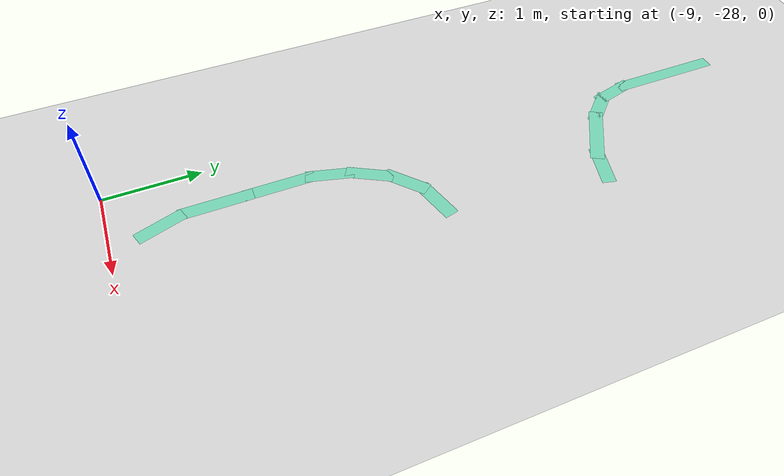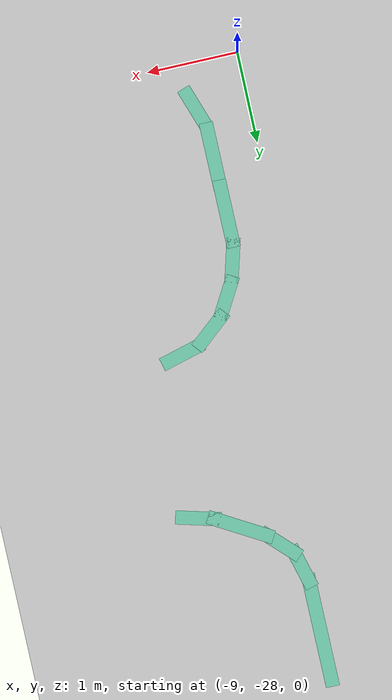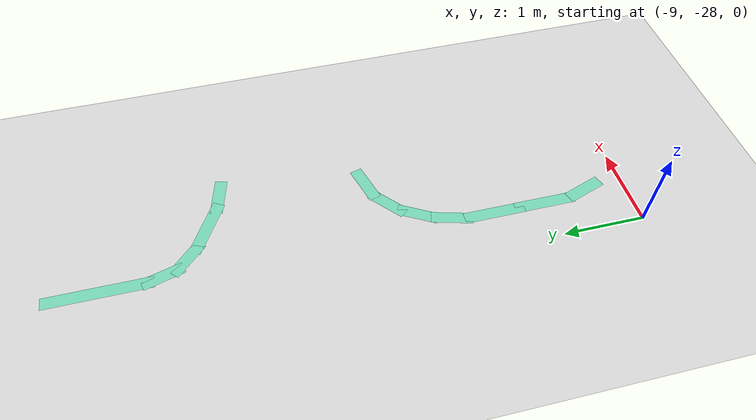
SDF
<sdf version="1.6">
 <world name="world">
  <model name="ground_plane">
   <static>1</static>
   <link name="link">
    <collision name="collision">
     <geometry><plane><normal>0 0 1</normal><size>100 100</size></plane></geometry>
     <surface><friction><ode><mu>100</mu><mu2>50</mu2></ode></friction></surface>
    </collision>
    <visual name="visual">
     <cast_shadows>0</cast_shadows>
     <geometry><plane><normal>0 0 1</normal><size>100 100</size></plane></geometry>
     <material>
      <script><uri>file://media/materials/scripts/gazebo.material</uri><name>Gazebo/Grey</name></script>
     </material>
    </visual>
   </link>
   <pose>0 0 -0.1 0 -0 0</pose>
  </model>
  <model name="path_hospital">
   <link name="Wall_44_clone">
    <pose>-6.90488 1.17038 0 0 -0 1.5708</pose>
    <visual name="Wall_44_Visual">
     <geometry><box><size>0.75 0.15 0</size></box></geometry>
     <material>
      <script><uri>file://media/materials/scripts/gazebo.material</uri><name>Gazebo/Grey</name></script>
      <ambient>0.435294 0.796078 0.67451 1</ambient>
      <shader type="pixel"/>
     </material>
     <meta><layer>0</layer></meta>
    </visual>
    <collision name="Wall_44_Collision">
     <geometry><box><size>0.75 0.15 0</size></box></geometry>
     <surface>
      <friction>
       <ode><mu>1</mu><mu2>1</mu2><fdir1>0 0 0</fdir1><slip1>0</slip1><slip2>0</slip2></ode>
       <torsional>
        <coefficient>1</coefficient>
        <patch_radius>0</patch_radius>
        <surface_radius>0</surface_radius>
        <use_patch_radius>1</use_patch_radius>
        <ode><slip>0</slip></ode>
       </torsional>
      </friction>
      <bounce><restitution_coefficient>0</restitution_coefficient><threshold>1e+06</threshold></bounce>
      <contact>
       <collide_without_contact>0</collide_without_contact>
       <collide_without_contact_bitmask>1</collide_without_contact_bitmask>
       <collide_bitmask>1</collide_bitmask>
       <ode>
        <soft_cfm>0</soft_cfm>
        <soft_erp>0.2</soft_erp>
        <kp>1e+13</kp>
        <kd>1</kd>
        <max_vel>0.01</max_vel>
        <min_depth>0</min_depth>
       </ode>
       <bullet>
        <split_impulse>1</split_impulse>
        <split_impulse_penetration_threshold>-0.01</split_impulse_penetration_threshold>
        <soft_cfm>0</soft_cfm>
        <soft_erp>0.2</soft_erp>
        <kp>1e+13</kp>
        <kd>1</kd>
       </bullet>
      </contact>
     </surface>
    </collision>
   </link>
   <link name="Wall_44_clone_0">
    <pose>-6.9028 0.531311 0 0 -0 1.5708</pose>
    <visual name="Wall_44_Visual">
     <geometry><box><size>0.75 0.15 0</size></box></geometry>
     <material>
      <script><uri>file://media/materials/scripts/gazebo.material</uri><name>Gazebo/Grey</name></script>
      <ambient>0.435294 0.796078 0.67451 1</ambient>
      <shader type="pixel"/>
     </material>
     <meta><layer>0</layer></meta>
    </visual>
    <collision name="Wall_44_Collision">
     <geometry><box><size>0.75 0.15 0</size></box></geometry>
     <surface>
      <friction>
       <ode><mu>1</mu><mu2>1</mu2><fdir1>0 0 0</fdir1><slip1>0</slip1><slip2>0</slip2></ode>
       <torsional>
        <coefficient>1</coefficient>
        <patch_radius>0</patch_radius>
        <surface_radius>0</surface_radius>
        <use_patch_radius>1</use_patch_radius>
        <ode><slip>0</slip></ode>
       </torsional>
      </friction>
      <bounce><restitution_coefficient>0</restitution_coefficient><threshold>1e+06</threshold></bounce>
      <contact>
       <collide_without_contact>0</collide_without_contact>
       <collide_without_contact_bitmask>1</collide_without_contact_bitmask>
       <collide_bitmask>1</collide_bitmask>
       <ode>
        <soft_cfm>0</soft_cfm>
        <soft_erp>0.2</soft_erp>
        <kp>1e+13</kp>
        <kd>1</kd>
        <max_vel>0.01</max_vel>
        <min_depth>0</min_depth>
       </ode>
       <bullet>
        <split_impulse>1</split_impulse>
        <split_impulse_penetration_threshold>-0.01</split_impulse_penetration_threshold>
        <soft_cfm>0</soft_cfm>
        <soft_erp>0.2</soft_erp>
        <kp>1e+13</kp>
        <kd>1</kd>
       </bullet>
      </contact>
     </surface>
    </collision>
   </link>
   <link name="Wall_46_clone_clone_clone_0">
    <pose>-6.70207 2.06609 0 0 -0 1.0472</pose>
    <visual name="Wall_46_Visual">
     <geometry><box><size>0.5 0.15 0</size></box></geometry>
     <material>
      <script><uri>file://media/materials/scripts/gazebo.material</uri><name>Gazebo/Grey</name></script>
      <ambient>0.435294 0.796078 0.67451 1</ambient>
      <shader type="pixel"/>
     </material>
     <meta><layer>0</layer></meta>
    </visual>
    <collision name="Wall_46_Collision">
     <geometry><box><size>0.5 0.15 0</size></box></geometry>
     <surface>
      <friction>
       <ode><mu>1</mu><mu2>1</mu2><fdir1>0 0 0</fdir1><slip1>0</slip1><slip2>0</slip2></ode>
       <torsional>
        <coefficient>1</coefficient>
        <patch_radius>0</patch_radius>
        <surface_radius>0</surface_radius>
        <use_patch_radius>1</use_patch_radius>
        <ode><slip>0</slip></ode>
       </torsional>
      </friction>
      <bounce><restitution_coefficient>0</restitution_coefficient><threshold>1e+06</threshold></bounce>
      <contact>
       <collide_without_contact>0</collide_without_contact>
       <collide_without_contact_bitmask>1</collide_without_contact_bitmask>
       <collide_bitmask>1</collide_bitmask>
       <ode>
        <soft_cfm>0</soft_cfm>
        <soft_erp>0.2</soft_erp>
        <kp>1e+13</kp>
        <kd>1</kd>
        <max_vel>0.01</max_vel>
        <min_depth>0</min_depth>
       </ode>
       <bullet>
        <split_impulse>1</split_impulse>
        <split_impulse_penetration_threshold>-0.01</split_impulse_penetration_threshold>
        <soft_cfm>0</soft_cfm>
        <soft_erp>0.2</soft_erp>
        <kp>1e+13</kp>
        <kd>1</kd>
       </bullet>
      </contact>
     </surface>
    </collision>
   </link>
   <link name="Wall_46_clone_clone_clone_1">
    <pose>-6.85582 1.68768 0 0 -0 1.3</pose>
    <inertial>
     <mass>1</mass>
     <inertia><ixx>1</ixx><ixy>0</ixy><ixz>0</ixz><iyy>1</iyy><iyz>0</iyz><izz>1</izz></inertia>
    </inertial>
    <visual name="Wall_46_Visual">
     <geometry><box><size>0.5 0.15 0</size></box></geometry>
     <material>
      <script><uri>file://media/materials/scripts/gazebo.material</uri><name>Gazebo/Grey</name></script>
      <ambient>0.435294 0.796078 0.67451 1</ambient>
      <shader type="pixel"><normal_map>__default__</normal_map></shader>
      <diffuse>0.7 0.7 0.7 1</diffuse>
      <specular>0.01 0.01 0.01 1</specular>
      <emissive>0 0 0 1</emissive>
     </material>
     <meta><layer>0</layer></meta>
    </visual>
    <collision name="Wall_46_Collision">
     <geometry><box><size>0.5 0.15 0</size></box></geometry>
     <surface>
      <friction>
       <ode><mu>1</mu><mu2>1</mu2><fdir1>0 0 0</fdir1><slip1>0</slip1><slip2>0</slip2></ode>
       <torsional>
        <coefficient>1</coefficient>
        <patch_radius>0</patch_radius>
        <surface_radius>0</surface_radius>
        <use_patch_radius>1</use_patch_radius>
        <ode><slip>0</slip></ode>
       </torsional>
      </friction>
      <bounce><restitution_coefficient>0</restitution_coefficient><threshold>1e+06</threshold></bounce>
      <contact>
       <collide_without_contact>0</collide_without_contact>
       <collide_without_contact_bitmask>1</collide_without_contact_bitmask>
       <collide_bitmask>1</collide_bitmask>
       <ode>
        <soft_cfm>0</soft_cfm>
        <soft_erp>0.2</soft_erp>
        <kp>1e+13</kp>
        <kd>1</kd>
        <max_vel>0.01</max_vel>
        <min_depth>0</min_depth>
       </ode>
       <bullet>
        <split_impulse>1</split_impulse>
        <split_impulse_penetration_threshold>-0.01</split_impulse_penetration_threshold>
        <soft_cfm>0</soft_cfm>
        <soft_erp>0.2</soft_erp>
        <kp>1e+13</kp>
        <kd>1</kd>
       </bullet>
      </contact>
     </surface>
    </collision>
   </link>
   <link name="Wall_46_clone_clone_clone_2">
    <pose>-6.82681 -0.021135 0 0 -0 1.9</pose>
    <inertial>
     <mass>1</mass>
     <inertia><ixx>1</ixx><ixy>0</ixy><ixz>0</ixz><iyy>1</iyy><iyz>0</iyz><izz>1</izz></inertia>
    </inertial>
    <visual name="Wall_46_Visual">
     <geometry><box><size>0.5 0.15 0</size></box></geometry>
     <material>
      <script><uri>file://media/materials/scripts/gazebo.material</uri><name>Gazebo/Grey</name></script>
      <ambient>0.435294 0.796078 0.67451 1</ambient>
      <shader type="pixel"><normal_map>__default__</normal_map></shader>
      <diffuse>0.7 0.7 0.7 1</diffuse>
      <specular>0.01 0.01 0.01 1</specular>
      <emissive>0 0 0 1</emissive>
     </material>
     <meta><layer>0</layer></meta>
    </visual>
    <collision name="Wall_46_Collision">
     <geometry><box><size>0.5 0.15 0</size></box></geometry>
     <surface>
      <friction>
       <ode><mu>1</mu><mu2>1</mu2><fdir1>0 0 0</fdir1><slip1>0</slip1><slip2>0</slip2></ode>
       <torsional>
        <coefficient>1</coefficient>
        <patch_radius>0</patch_radius>
        <surface_radius>0</surface_radius>
        <use_patch_radius>1</use_patch_radius>
        <ode><slip>0</slip></ode>
       </torsional>
      </friction>
      <bounce><restitution_coefficient>0</restitution_coefficient><threshold>1e+06</threshold></bounce>
      <contact>
       <collide_without_contact>0</collide_without_contact>
       <collide_without_contact_bitmask>1</collide_without_contact_bitmask>
       <collide_bitmask>1</collide_bitmask>
       <ode>
        <soft_cfm>0</soft_cfm>
        <soft_erp>0.2</soft_erp>
        <kp>1e+13</kp>
        <kd>1</kd>
        <max_vel>0.01</max_vel>
        <min_depth>0</min_depth>
       </ode>
       <bullet>
        <split_impulse>1</split_impulse>
        <split_impulse_penetration_threshold>-0.01</split_impulse_penetration_threshold>
        <soft_cfm>0</soft_cfm>
        <soft_erp>0.2</soft_erp>
        <kp>1e+13</kp>
        <kd>1</kd>
       </bullet>
      </contact>
     </surface>
    </collision>
   </link>
   <link name="Wall_46_clone_clone_clone_clone">
    <pose>-6.46051 2.37146 0 0 -0 0.7</pose>
    <inertial>
     <mass>1</mass>
     <inertia><ixx>1</ixx><ixy>0</ixy><ixz>0</ixz><iyy>1</iyy><iyz>0</iyz><izz>1</izz></inertia>
    </inertial>
    <visual name="Wall_46_Visual">
     <geometry><box><size>0.5 0.15 0</size></box></geometry>
     <material>
      <script><uri>file://media/materials/scripts/gazebo.material</uri><name>Gazebo/Grey</name></script>
      <ambient>0.435294 0.796078 0.67451 1</ambient>
      <shader type="pixel"><normal_map>__default__</normal_map></shader>
      <diffuse>0.7 0.7 0.7 1</diffuse>
      <specular>0.01 0.01 0.01 1</specular>
      <emissive>0 0 0 1</emissive>
     </material>
     <meta><layer>0</layer></meta>
    </visual>
    <collision name="Wall_46_Collision">
     <geometry><box><size>0.5 0.15 0</size></box></geometry>
     <surface>
      <friction>
       <ode><mu>1</mu><mu2>1</mu2><fdir1>0 0 0</fdir1><slip1>0</slip1><slip2>0</slip2></ode>
       <torsional>
        <coefficient>1</coefficient>
        <patch_radius>0</patch_radius>
        <surface_radius>0</surface_radius>
        <use_patch_radius>1</use_patch_radius>
        <ode><slip>0</slip></ode>
       </torsional>
      </friction>
      <bounce><restitution_coefficient>0</restitution_coefficient><threshold>1e+06</threshold></bounce>
      <contact>
       <collide_without_contact>0</collide_without_contact>
       <collide_without_contact_bitmask>1</collide_without_contact_bitmask>
       <collide_bitmask>1</collide_bitmask>
       <ode>
        <soft_cfm>0</soft_cfm>
        <soft_erp>0.2</soft_erp>
        <kp>1e+13</kp>
        <kd>1</kd>
        <max_vel>0.01</max_vel>
        <min_depth>0</min_depth>
       </ode>
       <bullet>
        <split_impulse>1</split_impulse>
        <split_impulse_penetration_threshold>-0.01</split_impulse_penetration_threshold>
        <soft_cfm>0</soft_cfm>
        <soft_erp>0.2</soft_erp>
        <kp>1e+13</kp>
        <kd>1</kd>
       </bullet>
      </contact>
     </surface>
    </collision>
   </link>
   <link name="Wall_47_clone">
    <pose>-6.10436 2.55791 0 0 -0 0.261799</pose>
    <visual name="Wall_47_Visual">
     <geometry><box><size>0.5 0.15 0</size></box></geometry>
     <material>
      <script><uri>file://media/materials/scripts/gazebo.material</uri><name>Gazebo/Grey</name></script>
      <ambient>0.435294 0.796078 0.67451 1</ambient>
      <shader type="pixel"/>
     </material>
     <meta><layer>0</layer></meta>
    </visual>
    <collision name="Wall_47_Collision">
     <geometry><box><size>0.5 0.15 0</size></box></geometry>
     <surface>
      <friction>
       <ode><mu>1</mu><mu2>1</mu2><fdir1>0 0 0</fdir1><slip1>0</slip1><slip2>0</slip2></ode>
       <torsional>
        <coefficient>1</coefficient>
        <patch_radius>0</patch_radius>
        <surface_radius>0</surface_radius>
        <use_patch_radius>1</use_patch_radius>
        <ode><slip>0</slip></ode>
       </torsional>
      </friction>
      <bounce><restitution_coefficient>0</restitution_coefficient><threshold>1e+06</threshold></bounce>
      <contact>
       <collide_without_contact>0</collide_without_contact>
       <collide_without_contact_bitmask>1</collide_without_contact_bitmask>
       <collide_bitmask>1</collide_bitmask>
       <ode>
        <soft_cfm>0</soft_cfm>
        <soft_erp>0.2</soft_erp>
        <kp>1e+13</kp>
        <kd>1</kd>
        <max_vel>0.01</max_vel>
        <min_depth>0</min_depth>
       </ode>
       <bullet>
        <split_impulse>1</split_impulse>
        <split_impulse_penetration_threshold>-0.01</split_impulse_penetration_threshold>
        <soft_cfm>0</soft_cfm>
        <soft_erp>0.2</soft_erp>
        <kp>1e+13</kp>
        <kd>1</kd>
       </bullet>
      </contact>
     </surface>
    </collision>
   </link>
   <link name="Wall_60">
    <pose>-5.87851 4.33576 0 0 -0 2.87979</pose>
    <visual name="Wall_60_Visual">
     <geometry><box><size>0.5 0.15 0</size></box></geometry>
     <material>
      <script><uri>file://media/materials/scripts/gazebo.material</uri><name>Gazebo/Grey</name></script>
      <ambient>0.435294 0.796078 0.67451 1</ambient>
      <shader type="pixel"/>
     </material>
     <meta><layer>0</layer></meta>
    </visual>
    <collision name="Wall_60_Collision">
     <geometry><box><size>0.5 0.15 0</size></box></geometry>
     <surface>
      <friction>
       <ode><mu>1</mu><mu2>1</mu2><fdir1>0 0 0</fdir1><slip1>0</slip1><slip2>0</slip2></ode>
       <torsional>
        <coefficient>1</coefficient>
        <patch_radius>0</patch_radius>
        <surface_radius>0</surface_radius>
        <use_patch_radius>1</use_patch_radius>
        <ode><slip>0</slip></ode>
       </torsional>
      </friction>
      <bounce><restitution_coefficient>0</restitution_coefficient><threshold>1e+06</threshold></bounce>
      <contact>
       <collide_without_contact>0</collide_without_contact>
       <collide_without_contact_bitmask>1</collide_without_contact_bitmask>
       <collide_bitmask>1</collide_bitmask>
       <ode>
        <soft_cfm>0</soft_cfm>
        <soft_erp>0.2</soft_erp>
        <kp>1e+13</kp>
        <kd>1</kd>
        <max_vel>0.01</max_vel>
        <min_depth>0</min_depth>
       </ode>
       <bullet>
        <split_impulse>1</split_impulse>
        <split_impulse_penetration_threshold>-0.01</split_impulse_penetration_threshold>
        <soft_cfm>0</soft_cfm>
        <soft_erp>0.2</soft_erp>
        <kp>1e+13</kp>
        <kd>1</kd>
       </bullet>
      </contact>
     </surface>
    </collision>
   </link>
   <link name="Wall_61">
    <pose>-6.30736 4.53105 0 0 -0 2.61799</pose>
    <visual name="Wall_61_Visual">
     <geometry><box><size>0.75 0.15 0</size></box></geometry>
     <material>
      <script><uri>file://media/materials/scripts/gazebo.material</uri><name>Gazebo/Grey</name></script>
      <ambient>0.435294 0.796078 0.67451 1</ambient>
      <shader type="pixel"/>
     </material>
     <meta><layer>0</layer></meta>
    </visual>
    <collision name="Wall_61_Collision">
     <geometry><box><size>0.75 0.15 0</size></box></geometry>
     <surface>
      <friction>
       <ode><mu>1</mu><mu2>1</mu2><fdir1>0 0 0</fdir1><slip1>0</slip1><slip2>0</slip2></ode>
       <torsional>
        <coefficient>1</coefficient>
        <patch_radius>0</patch_radius>
        <surface_radius>0</surface_radius>
        <use_patch_radius>1</use_patch_radius>
        <ode><slip>0</slip></ode>
       </torsional>
      </friction>
      <bounce><restitution_coefficient>0</restitution_coefficient><threshold>1e+06</threshold></bounce>
      <contact>
       <collide_without_contact>0</collide_without_contact>
       <collide_without_contact_bitmask>1</collide_without_contact_bitmask>
       <collide_bitmask>1</collide_bitmask>
       <ode>
        <soft_cfm>0</soft_cfm>
        <soft_erp>0.2</soft_erp>
        <kp>1e+13</kp>
        <kd>1</kd>
        <max_vel>0.01</max_vel>
        <min_depth>0</min_depth>
       </ode>
       <bullet>
        <split_impulse>1</split_impulse>
        <split_impulse_penetration_threshold>-0.01</split_impulse_penetration_threshold>
        <soft_cfm>0</soft_cfm>
        <soft_erp>0.2</soft_erp>
        <kp>1e+13</kp>
        <kd>1</kd>
       </bullet>
      </contact>
     </surface>
    </collision>
   </link>
   <link name="Wall_62">
    <pose>-6.69091 4.80479 0 0 -0 2.35619</pose>
    <visual name="Wall_62_Visual">
     <geometry><box><size>0.5 0.15 0</size></box></geometry>
     <material>
      <script><uri>file://media/materials/scripts/gazebo.material</uri><name>Gazebo/Grey</name></script>
      <ambient>0.435294 0.796078 0.67451 1</ambient>
      <shader type="pixel"/>
     </material>
     <meta><layer>0</layer></meta>
    </visual>
    <collision name="Wall_62_Collision">
     <geometry><box><size>0.5 0.15 0</size></box></geometry>
     <surface>
      <friction>
       <ode><mu>1</mu><mu2>1</mu2><fdir1>0 0 0</fdir1><slip1>0</slip1><slip2>0</slip2></ode>
       <torsional>
        <coefficient>1</coefficient>
        <patch_radius>0</patch_radius>
        <surface_radius>0</surface_radius>
        <use_patch_radius>1</use_patch_radius>
        <ode><slip>0</slip></ode>
       </torsional>
      </friction>
      <bounce><restitution_coefficient>0</restitution_coefficient><threshold>1e+06</threshold></bounce>
      <contact>
       <collide_without_contact>0</collide_without_contact>
       <collide_without_contact_bitmask>1</collide_without_contact_bitmask>
       <collide_bitmask>1</collide_bitmask>
       <ode>
        <soft_cfm>0</soft_cfm>
        <soft_erp>0.2</soft_erp>
        <kp>1e+13</kp>
        <kd>1</kd>
        <max_vel>0.01</max_vel>
        <min_depth>0</min_depth>
       </ode>
       <bullet>
        <split_impulse>1</split_impulse>
        <split_impulse_penetration_threshold>-0.01</split_impulse_penetration_threshold>
        <soft_cfm>0</soft_cfm>
        <soft_erp>0.2</soft_erp>
        <kp>1e+13</kp>
        <kd>1</kd>
       </bullet>
      </contact>
     </surface>
    </collision>
   </link>
   <link name="Wall_63">
    <pose>-6.85995 5.09757 0 0 -0 1.8326</pose>
    <visual name="Wall_63_Visual">
     <geometry><box><size>0.5 0.15 0</size></box></geometry>
     <material>
      <script><uri>file://media/materials/scripts/gazebo.material</uri><name>Gazebo/Grey</name></script>
      <ambient>0.435294 0.796078 0.67451 1</ambient>
      <shader type="pixel"/>
     </material>
     <meta><layer>0</layer></meta>
    </visual>
    <collision name="Wall_63_Collision">
     <geometry><box><size>0.5 0.15 0</size></box></geometry>
     <surface>
      <friction>
       <ode><mu>1</mu><mu2>1</mu2><fdir1>0 0 0</fdir1><slip1>0</slip1><slip2>0</slip2></ode>
       <torsional>
        <coefficient>1</coefficient>
        <patch_radius>0</patch_radius>
        <surface_radius>0</surface_radius>
        <use_patch_radius>1</use_patch_radius>
        <ode><slip>0</slip></ode>
       </torsional>
      </friction>
      <bounce><restitution_coefficient>0</restitution_coefficient><threshold>1e+06</threshold></bounce>
      <contact>
       <collide_without_contact>0</collide_without_contact>
       <collide_without_contact_bitmask>1</collide_without_contact_bitmask>
       <collide_bitmask>1</collide_bitmask>
       <ode>
        <soft_cfm>0</soft_cfm>
        <soft_erp>0.2</soft_erp>
        <kp>1e+13</kp>
        <kd>1</kd>
        <max_vel>0.01</max_vel>
        <min_depth>0</min_depth>
       </ode>
       <bullet>
        <split_impulse>1</split_impulse>
        <split_impulse_penetration_threshold>-0.01</split_impulse_penetration_threshold>
        <soft_cfm>0</soft_cfm>
        <soft_erp>0.2</soft_erp>
        <kp>1e+13</kp>
        <kd>1</kd>
       </bullet>
      </contact>
     </surface>
    </collision>
   </link>
   <link name="Wall_64">
    <pose>-6.90524 5.81661 0 0 -0 1.5708</pose>
    <visual name="Wall_64_Visual">
     <geometry><box><size>1.25 0.15 0</size></box></geometry>
     <material>
      <script><uri>file://media/materials/scripts/gazebo.material</uri><name>Gazebo/Grey</name></script>
      <ambient>0.435294 0.796078 0.67451 1</ambient>
      <shader type="pixel"/>
     </material>
     <meta><layer>0</layer></meta>
    </visual>
    <collision name="Wall_64_Collision">
     <geometry><box><size>1.25 0.15 0</size></box></geometry>
     <surface>
      <friction>
       <ode><mu>1</mu><mu2>1</mu2><fdir1>0 0 0</fdir1><slip1>0</slip1><slip2>0</slip2></ode>
       <torsional>
        <coefficient>1</coefficient>
        <patch_radius>0</patch_radius>
        <surface_radius>0</surface_radius>
        <use_patch_radius>1</use_patch_radius>
        <ode><slip>0</slip></ode>
       </torsional>
      </friction>
      <bounce><restitution_coefficient>0</restitution_coefficient><threshold>1e+06</threshold></bounce>
      <contact>
       <collide_without_contact>0</collide_without_contact>
       <collide_without_contact_bitmask>1</collide_without_contact_bitmask>
       <collide_bitmask>1</collide_bitmask>
       <ode>
        <soft_cfm>0</soft_cfm>
        <soft_erp>0.2</soft_erp>
        <kp>1e+13</kp>
        <kd>1</kd>
        <max_vel>0.01</max_vel>
        <min_depth>0</min_depth>
       </ode>
       <bullet>
        <split_impulse>1</split_impulse>
        <split_impulse_penetration_threshold>-0.01</split_impulse_penetration_threshold>
        <soft_cfm>0</soft_cfm>
        <soft_erp>0.2</soft_erp>
        <kp>1e+13</kp>
        <kd>1</kd>
       </bullet>
      </contact>
     </surface>
    </collision>
   </link>
   <static>1</static>
   <pose>-1.59521 -27.4877 0.001 0 -0 0</pose>
  </model>
 </world>
</sdf>
